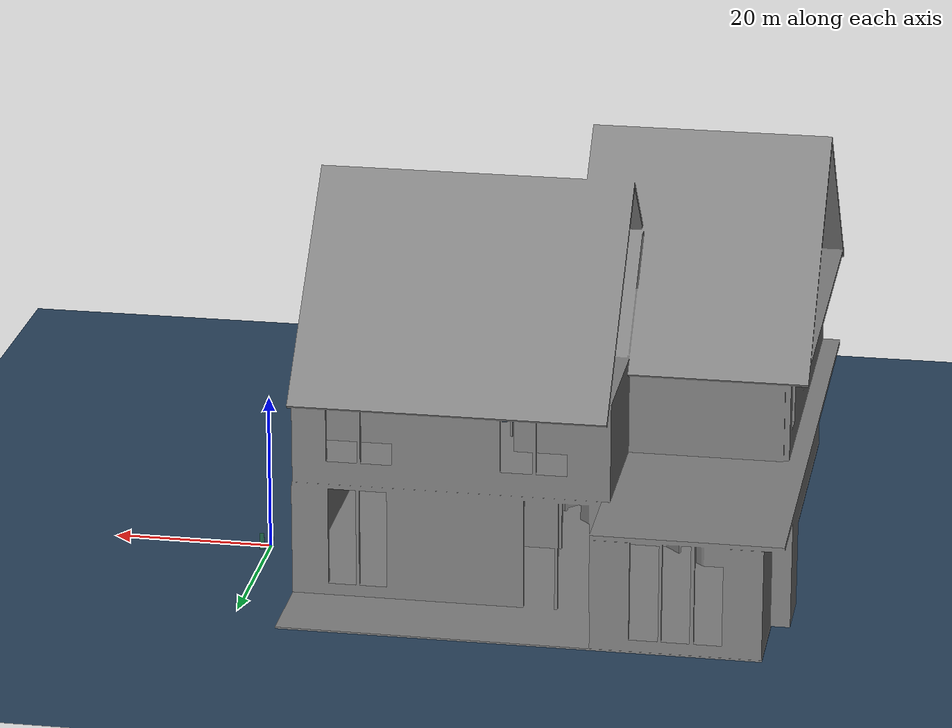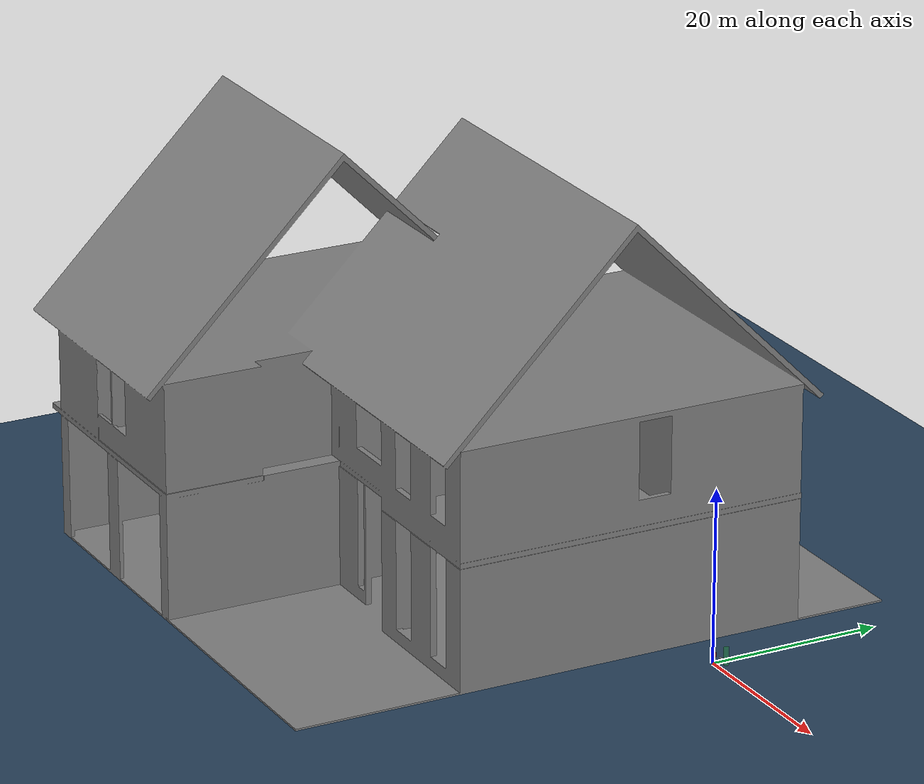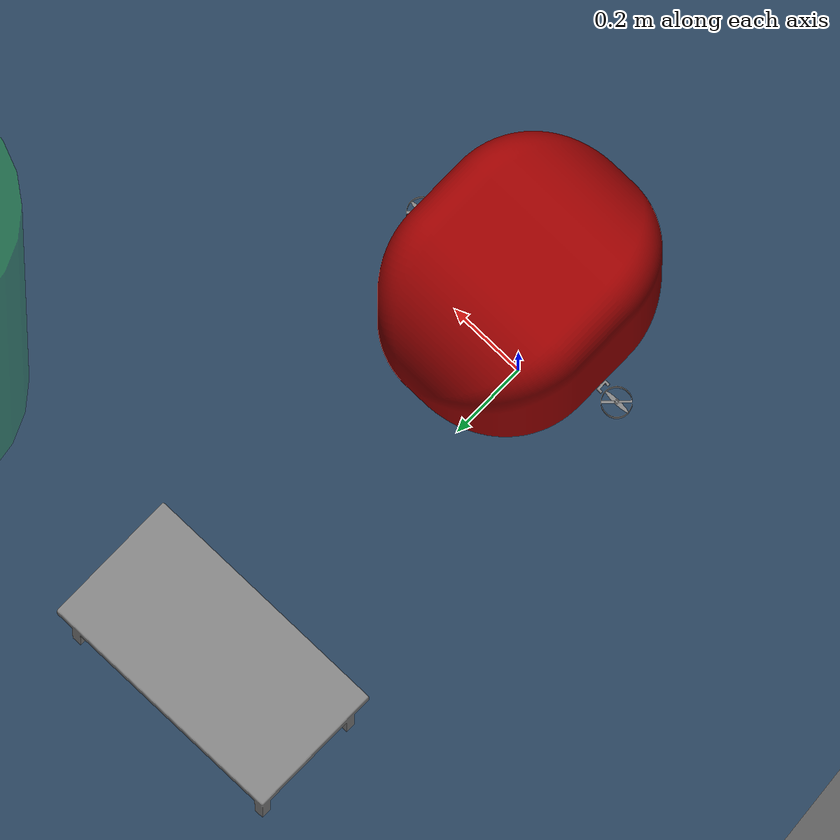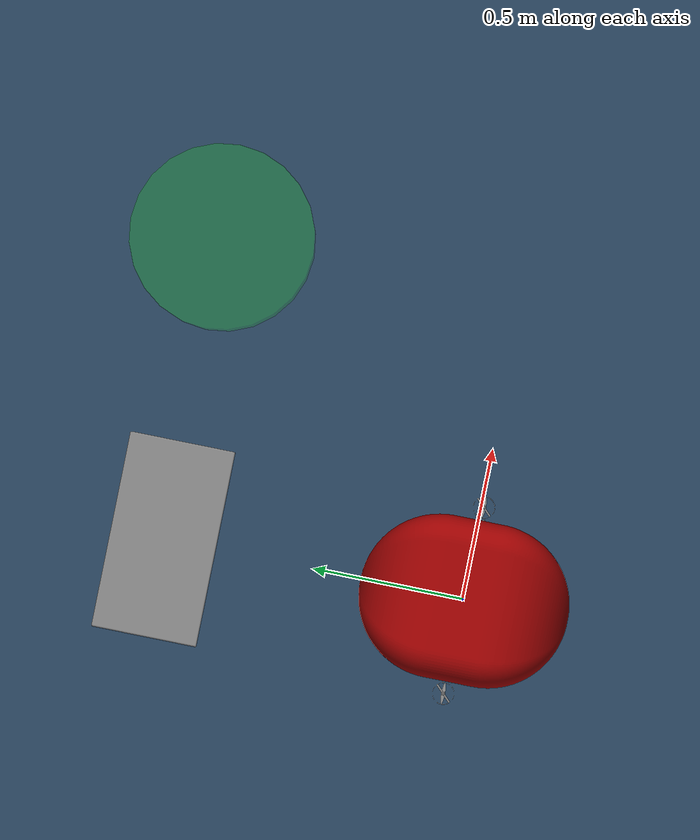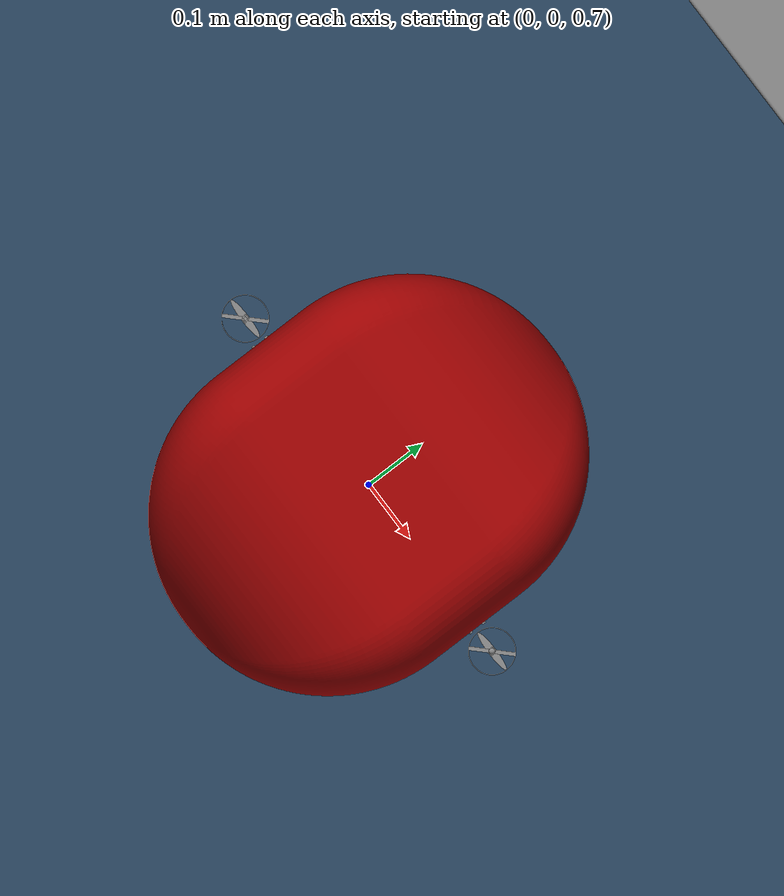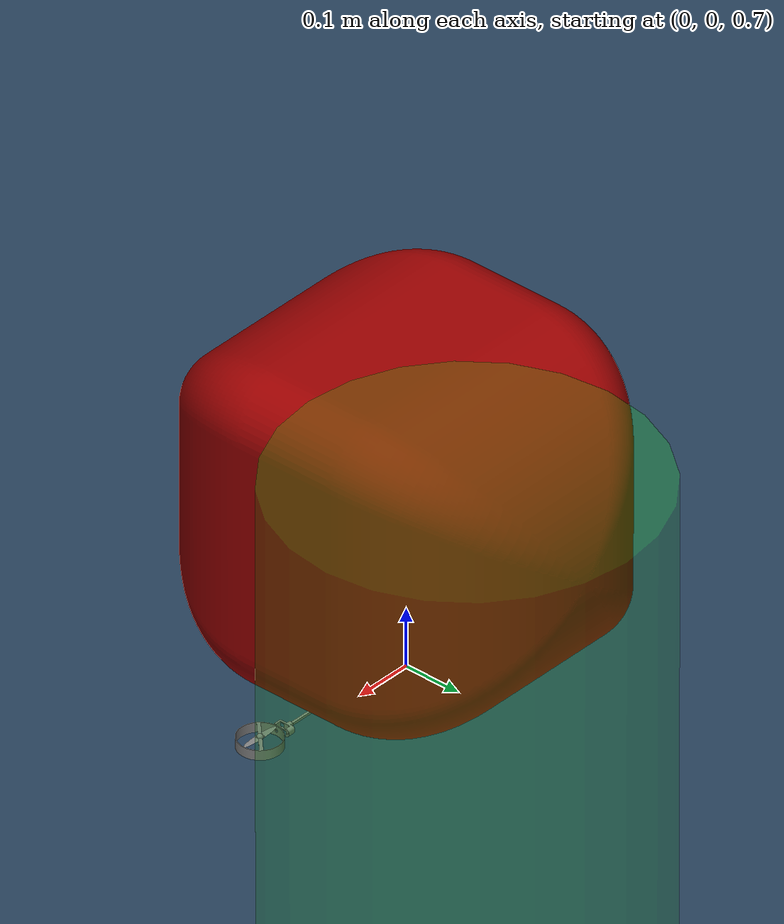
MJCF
<mujoco>

  <compiler assetdir="assets" />

  <compiler angle="degree" coordinate="local" inertiafromgeom="true" />
  <option gravity="0 0 -9.8" viscosity="1.8e-5" >
    <flag contact="enable"/>
  </option>

  <default>
    <motor ctrlrange="-1 1" />
    <default class="imported">
      <mesh scale="0.001 0.001 0.001" />
    </default>

    <default class="balloon">
    <geom density="0.167" fluidshape="ellipsoid" />
    </default>

    </default>

  <visual>
    <headlight diffuse="0.6 0.6 0.6" ambient="0.3 0.3 0.3" specular="0 0 0" />
    <rgba haze="0.15 0.25 0.35 1" />
    <global azimuth="-20" elevation="-20" ellipsoidinertia="true" />
  </visual>

  <asset>
    <texture type="skybox" builtin="gradient" rgb1="0.3 0.5 0.7" rgb2="0 0 0" width="512"
      height="30720" />
    <texture type="2d" name="groundplane" builtin="checker" mark="edge" rgb1="0.2 0.3 0.4"
      rgb2="0.1 0.2 0.3"
      markrgb="0.8 0.8 0.8" width="300" height="300" />
    <material name="groundplane" texture="groundplane" texuniform="true" texrepeat="5 5"
      reflectance="0.002" />
    <mesh file="BalloonBody.obj" class="imported"/>
    <mesh file="Frame.obj" class="imported"/>
    <mesh file="CarbonFiber.obj" class="imported"/>
    <mesh file="PropGuard.obj" class="imported"/>
    <mesh file="ServoMount.obj" class="imported"/>
    <mesh file="Board Mount.obj" class="imported" />
    <mesh file="House.obj" scale="0.3 0.3 0.3"/>
    <mesh name="desk" file="Desk.obj" scale=".01 .01 .01" />
 </asset>

  <worldbody>
    <light pos="0 0 1.5" dir="0 0 -1" directional="true" />
    <geom name="floor" size="0 0 0.05" type="plane" material="groundplane" />
    <geom type="mesh" mesh="House" pos="1 1 0.1"/>

    <geom name="chasis" type="mesh" mesh="desk" pos="0 1 .3" quat="1 -1 0 0"/>
  </worldbody>

  <worldbody>
    <body>
      <freejoint/>
      <geom name="waypoint" type="cylinder"  rgba="0 1 0 .08" size=".3  1" pos="1 1 1"/>
    </body>
    <body gravcomp="7.2" pos="0 0 1">
      <freejoint />
      <geom name="mylar" type="mesh" mesh="BalloonBody" rgba="0.6 0 0 1" mass="1"/>
      <site name="mountBalloon1" pos="-.05 0  -0.27"/>
      <site name="mountBalloon2" pos=".05 0 -0.27"/>
      <camera name="followCamera" pos="0 -2.5 .2" euler="90 0 0" />
    </body>
    <body pos="0 0 0.73" euler="180 0 0">
      <freejoint/>
        <site name="mountGondola1" pos="-.05 0 0"/>
        <site name="mountGondola2" pos=".05 0 0"/>
        <camera name="blimpCamera" pos="0 0.08 0.03" euler="90 0 180" />
        <geom type="mesh" name="controller" mesh="Frame" euler="0 0 0" mass="5.82"/>
        <geom name="carbonFiberRod" type="mesh" mesh="CarbonFiber"  size="0.004 0.5 0.004"  mass="0.25"/>
        <body name = "m1" pos ="-0.27 -0.005 0.002">
          <geom type="mesh" mesh="ServoMount" euler="0 0 180"/>
          <body name="guard1" pos="-0.04 0 -0.008" euler="0 0 0" >
            <geom type="mesh" mesh="PropGuard" euler = "180 0 0"  mass="0.04"/>
          <joint axis="1 0 0" name="servo1" pos="0.0 0.0 0.0" range="0 180" damping="0.2" armature="0.005" limited="true" type="hinge"/>
            <body name="prop1">
              <joint axis = "1 0 0" name="propeller1" damping="0.0003" type="hinge"/>
              <geom type="ellipsoid" size="0.035 0.006 0.0001" mass="0.02"/>
              <site name="thrust1" pos="0 0 0.008" />
            </body>
          </body>
        </body>
        <body name = "m2" pos = "0.27 0.005 0.002">
          <geom type="mesh" mesh="ServoMount"  euler="0 0 0"/>
          <body name="guard2" pos="0.04 0. -0.008" euler="0 0 0">
            <geom type="mesh" mesh="PropGuard" euler = "180 0 180" mass="0.04" />
          <joint axis="1 0 0" name="servo2" pos="0.0 0.0 0.0" range="0 180" damping="0.2" armature="0.005" limited="true" type="hinge"/>
            <body name="prop2">
              <joint axis = "1 0 0" name="propeller2" damping="0.0003" type="hinge"/>
              <geom type="ellipsoid" size="0.035 0.006 0.0001"  mass="0.02"/>
              <site name="thrust2" pos="0 0 0" />
            </body>
          </body>
        </body>
        <site name="imu" pos="0 0 0" />
    </body>
    </worldbody>

  <actuator>

    <motor name="servo1" ctrllimited="true" ctrlrange="-1 1" joint="servo1" />
    <motor name="servo2" ctrllimited="true" ctrlrange="-1 1" joint="servo2" />
    <motor name="motor1" site="thrust1" gear="0 0 7 0 0 0" ctrlrange="-2 2"/>
    <motor name="motor2" site="thrust2" gear="0 0 7 0 0 0" ctrlrange="-2 2"/>

  </actuator>

  <tendon>
    <spatial range="0 0.0001">
      <site site="mountBalloon1"/>
      <site site="mountGondola1"/>
    </spatial>

    <spatial range="0 0.0001">
      <site site="mountBalloon2"/>
      <site site="mountGondola2"/>
    </spatial>

  </tendon>

  <sensor>
    <gyro name="body_gyro" site="imu" />
    <accelerometer name="body_linacc" site="imu" />
    <framequat name="body_quat" objtype="site" objname="imu" />
  </sensor>

</mujoco>
